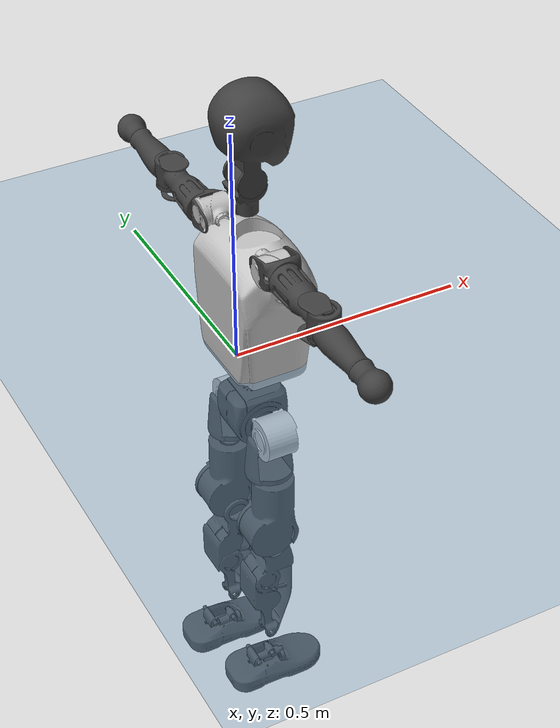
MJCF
<mujoco model="T1">
  <compiler angle="radian" assetdir="assets" balanceinertia="true" inertiafromgeom="false"/>

  <option timestep="0.005" density="1.2" viscosity="2e-05"/>

  <size nkey="1"/>

  <visual>
    <quality shadowsize="8192"/>
    <map shadowclip="0.5"/>
  </visual>

  <default>
    <default class="/">
      <joint armature="0.01" damping="0.01" frictionloss="0.1"/>
      <geom contype="0" conaffinity="0" group="1" solref="-1000 -80"/>
      <site size="0.01 0.005 0.005" group="5"/>
      <general forcelimited="true" biastype="affine" gainprm="25" biasprm="0 -25 -0.6"/>
      <default class="t1">
        <geom rgba="0.25 0.25 0.25 1"/>
        <default class="visual">
          <geom type="mesh" group="2"/>
        </default>
        <default class="collision">
          <geom group="3"/>
        </default>
        <default class="foot">
          <geom size="0.1115 0.05 0.015" type="box" condim="6" group="4" priority="1" solimp="0.015 1 0.015"/>
        </default>
        <default class="reward_collision_sphere">
          <geom group="5" rgba="1 0 0 1"/>
        </default>
      </default>
    </default>
  </default>

  <asset>
    <texture type="skybox" colorspace="auto" name="//unnamed_texture_0" builtin="gradient" rgb1="0.95 0.95 0.95" rgb2="0.95 0.95 0.95" width="100" height="600"/>
    <texture type="2d" colorspace="auto" name="texplane" builtin="checker" rgb1="0.345 0.575 0.748" rgb2="0.345 0.575 0.748" markrgb="1 1 1" width="512" height="512"/>
    <material name="MatPlane" class="/" texture="texplane" texuniform="true" texrepeat="2 2" specular="0.9"/>
    <mesh name="Trunk" class="/" file="Trunk.stl"/>
    <mesh name="H1" class="/" file="H1.stl"/>
    <mesh name="H2" class="/" file="H2.stl"/>
    <mesh name="AL1" class="/" file="AL1.stl"/>
    <mesh name="AL2" class="/" file="AL2.stl"/>
    <mesh name="AL3" class="/" file="AL3.stl"/>
    <mesh name="left_hand_link" class="/" file="left_hand_link.stl"/>
    <mesh name="AR1" class="/" file="AR1.stl"/>
    <mesh name="AR2" class="/" file="AR2.stl"/>
    <mesh name="AR3" class="/" file="AR3.stl"/>
    <mesh name="right_hand_link" class="/" file="right_hand_link.stl"/>
    <mesh name="Waist" class="/" file="Waist.stl"/>
    <mesh name="Hip_Pitch_Left" class="/" file="Hip_Pitch_Left.stl"/>
    <mesh name="Hip_Roll_Left" class="/" file="Hip_Roll_Left.stl"/>
    <mesh name="Hip_Yaw_Left" class="/" file="Hip_Yaw_Left.stl"/>
    <mesh name="Shank_Left" class="/" file="Shank_Left.stl"/>
    <mesh name="Ankle_Cross_Left" class="/" file="Ankle_Cross_Left.stl"/>
    <mesh name="left_foot_link" class="/" file="left_foot_link.stl"/>
    <mesh name="Hip_Pitch_Right" class="/" file="Hip_Pitch_Right.stl"/>
    <mesh name="Hip_Roll_Right" class="/" file="Hip_Roll_Right.stl"/>
    <mesh name="Hip_Yaw_Right" class="/" file="Hip_Yaw_Right.stl"/>
    <mesh name="Shank_Right" class="/" file="Shank_Right.stl"/>
    <mesh name="Ankle_Cross_Right" class="/" file="Ankle_Cross_Right.stl"/>
    <mesh name="right_foot_link" class="/" file="right_foot_link.stl"/>
  </asset>

  <worldbody>
    <geom name="floor" class="/" size="100 100 0.125" type="plane" group="0" material="MatPlane"/>
    <light name="toplight_shadow" class="/" pos="0 0 5" dir="0.0990148 0.0990148 -0.990148" type="directional" ambient="0.04 0.04 0.04" diffuse="0.55 0.55 0.55" specular="0.12 0.12 0.12"/>
    <light name="toplight_fill" class="/" pos="0 0 5" dir="0.0990148 0.0990148 -0.990148" type="directional" castshadow="false" ambient="0.04 0.04 0.04" diffuse="0.3 0.3 0.3" specular="0.08 0.08 0.08"/>
    <body name="trunk" childclass="t1" pos="-0.00794154 0.00141731 -0.00120077" quat="1 0.000714252 0.000394503 -0.000368188">
      <inertial pos="0.0277536 -0.00364189 0.139071" quat="0.999799 -0.00529151 -0.00506619 -0.0186523" mass="6.46288" diaginertia="0.00281406 0.0220323 0.17064"/>
      <joint name="//unnamed_joint_0" type="free" armature="0" damping="0" frictionloss="0"/>
      <geom name="//unnamed_geom_1" class="visual" rgba="0.76 0.76 0.76 1" mesh="Trunk"/>
      <geom name="//unnamed_geom_2" class="collision" size="0.0639442 0.0852589 0.127888" pos="0.0306882 0 0.151664" type="box"/>
      <geom name="//unnamed_geom_3" class="reward_collision_sphere" size="0.0980477" pos="0.0306882 0 0.126387"/>
      <geom name="//unnamed_geom_4" class="reward_collision_sphere" size="0.0127888" pos="0.0306882 0.0665063 0"/>
      <geom name="//unnamed_geom_5" class="reward_collision_sphere" size="0.0127888" pos="0.0306882 -0.0665063 0"/>
      <geom name="//unnamed_geom_6" class="reward_collision_sphere" size="0.0127888" pos="0.0306882 0.0837197 0.227497"/>
      <geom name="//unnamed_geom_7" class="reward_collision_sphere" size="0.0127888" pos="0.0306882 -0.0837197 0.227497"/>
      <site name="imu" pos="0.0608883 0.0258951 -0.0442337" size="0.00852589"/>
      <camera name="track" pos="0 -1.56485 0" quat="0.707107 0.707107 0 0" mode="trackcom"/>
      <camera name="ego_camera" pos="0.0623993 0 0.530825" quat="-0.5 -0.5 0.5 0.5"/>
      <body name="H1" pos="0.0455622 0.0125839 0.320683" quat="0.999999 -0.00114419 0.00104274 -0.000373747">
        <inertial pos="0.00676233 -0.00416522 0.0783971" quat="0.788535 -0.0529427 -0.0218323 0.612318" mass="0.238007" diaginertia="8.41423e-06 7.5101e-05 0.000468848"/>
        <joint name="AAHead_yaw" pos="0 0 0" axis="0.0218411 0.0549271 0.998251" range="-1.57798 1.493" armature="0.00431497" damping="0" frictionloss="0.0570264"/>
        <geom name="//unnamed_geom_8" class="visual" mesh="H1"/>
        <body name="H2" pos="-0.00445823 -0.00125029 0.0787127" quat="0.999988 -0.00229031 -0.00434777 0.000232502">
          <inertial pos="0.00355872 0.0140112 0.123795" quat="0.988718 0.100955 -0.082856 -0.073349" mass="0.356909" diaginertia="7.86137e-05 0.0005972 0.00533615"/>
          <joint name="Head_pitch" pos="0 0 0" axis="0.00113752 -0.999999 0.000980451" stiffness="0.0322274" range="-1.28566 0.35713" armature="0.00541945" damping="0" frictionloss="0.089876"/>
          <geom name="//unnamed_geom_9" class="visual" mesh="H2"/>
          <geom name="//unnamed_geom_10" class="collision" size="0.0682071" pos="0.0051147 0 0.139026"/>
          <geom name="//unnamed_geom_11" class="reward_collision_sphere" size="0.076733" pos="0.0102294 0 0.126387"/>
        </body>
      </body>
      <body name="AL1" pos="0.0246244 0.0717416 0.269465" quat="1 0.000160914 0.000272286 1.91582e-05">
        <inertial pos="0.0123977 0.0228872 0.00937445" quat="0.495056 0.50104 -0.512511 0.491131" mass="0.278711" diaginertia="3.99466e-05 0.000318234 0.000854747"/>
        <joint name="Left_Shoulder_Pitch" pos="0 0 0" axis="-0.0234059 0.999174 0.033217" range="-3.41663 1.24784" armature="0.00560261" damping="0" frictionloss="0.120625"/>
        <geom name="//unnamed_geom_12" class="visual" rgba="0.76 0.76 0.76 1" mesh="AL1"/>
        <body name="AL2" pos="0.000259897 0.0262393 -0.00804323" quat="0.999997 0.000916316 0.00169738 0.00130545">
          <inertial pos="0.00196563 0.0324195 -0.00640081" quat="0.487512 0.512758 -0.487253 0.511854" mass="0.0944467" diaginertia="1.05263e-05 7.1974e-05 0.000530122"/>
          <joint name="Left_Shoulder_Roll" pos="0 0 0" axis="-0.999688 -0.0109795 0.0224484" stiffness="0.0101546" range="-1.73313 1.96046" armature="0.00883078" damping="0" frictionloss="0.0880111"/>
          <geom name="//unnamed_geom_13" class="visual" mesh="AL2"/>
          <body name="AL3" pos="-0.0121286 0.0471397 0.000615029" quat="0.999993 0.0016012 -0.000137002 -0.00336787">
            <inertial pos="-0.00161023 0.0641776 -0.00998206" quat="0.708596 0.703948 0.048436 -0.00149062" mass="0.618076" diaginertia="0.000378017 0.00364919 0.00191781"/>
            <joint name="Left_Elbow_Pitch" pos="0 0 0" axis="-0.00272025 -0.999994 0.00223351" stiffness="0.0201205" range="-2.26471 2.06396" armature="0.0129079" damping="0.0332343" frictionloss="0.0805546"/>
            <geom name="//unnamed_geom_14" class="visual" mesh="AL3"/>
            <geom name="//unnamed_geom_15" class="collision" size="0.0255777 0.0639442" pos="0 0.0391213 0" quat="0.707105 0.707108 0 0" type="cylinder"/>
            <geom name="//unnamed_geom_16" class="reward_collision_sphere" size="0.0306932"/>
            <body name="left_hand_link" pos="-0.00435843 0.115991 0.00193203" quat="0.999989 2.22405e-05 0.00318071 -0.00333739">
              <inertial pos="-0.0139717 0.0960882 0.00187593" quat="0.717815 0.696033 0.0148501 -0.00773738" mass="0.224954" diaginertia="0.000285593 0.00240847 0.000799557"/>
              <joint name="Left_Elbow_Yaw" pos="0 0 0" axis="-0.0390561 0.00833285 0.999202" range="-2.56752 0.145359" armature="0.00417721" damping="0" frictionloss="0.044357"/>
              <geom name="//unnamed_geom_17" class="visual" mesh="left_hand_link"/>
              <geom name="//unnamed_geom_18" class="collision" size="0.0255777 0.0746015" pos="0 0.101715 0" quat="0.707105 0.707108 0 0" type="cylinder"/>
              <geom name="//unnamed_geom_19" class="reward_collision_sphere" size="0.0426294"/>
              <geom name="//unnamed_geom_20" class="reward_collision_sphere" size="0.0298406" pos="0 0.0860669 0"/>
              <geom name="//unnamed_geom_21" class="reward_collision_sphere" size="0.0298406" pos="0 0.168222 0"/>
            </body>
          </body>
        </body>
      </body>
      <body name="AR1" pos="0.0300444 -0.0718363 0.276526" quat="0.999994 0.00300762 0.00179265 -0.000373767">
        <inertial pos="-0.00627032 -0.0390726 0.000717131" quat="0.504015 0.496184 -0.503947 0.49579" mass="0.323624" diaginertia="4.94897e-05 0.000366094 0.000919898"/>
        <joint name="Right_Shoulder_Pitch" pos="0 0 0" axis="0.0047944 -0.999988 0.00103436" range="-1.21241 3.23494" armature="0.00540508" damping="0.0675645" frictionloss="0.114935"/>
        <geom name="//unnamed_geom_22" class="visual" rgba="0.76 0.76 0.76 1" mesh="AR1"/>
        <body name="AR2" pos="0.00010447 -0.0421948 0.0116606" quat="1 -0.000160197 -0.000348874 -0.000792405">
          <inertial pos="0.00881525 -0.0390847 0.0127828" quat="0.51205 0.488409 -0.511727 0.487234" mass="0.0905689" diaginertia="1.26381e-05 0.00010544 0.00047966"/>
          <joint name="Right_Shoulder_Roll" pos="0 0 0" axis="-0.99967 0.0234035 -0.0105586" stiffness="0.0533038" range="-2.00232 1.59638" armature="0.00644909" damping="0" frictionloss="0.0825565"/>
          <geom name="//unnamed_geom_23" class="visual" mesh="AR2"/>
          <body name="AR3" pos="-0.00082226 -0.0550997 -0.00377227" quat="1 6.33126e-07 -3.9767e-05 -0.000274468">
            <inertial pos="0.011813 -0.0711342 0.000395942" quat="0.718189 0.695259 -0.0283663 0.00385" mass="0.646942" diaginertia="0.000468754 0.00376313 0.00172286"/>
            <joint name="Right_Elbow_Pitch" pos="0 0 0" axis="-0.0220037 0.999517 0.0219603" stiffness="0.048212" range="-2.28937 2.42411" armature="0.0078895" damping="0.0153416" frictionloss="0.136401"/>
            <geom name="//unnamed_geom_24" class="visual" mesh="AR3"/>
            <geom name="//unnamed_geom_25" class="collision" size="0.0255777 0.0639442" pos="0 -0.0391213 0" quat="0.707105 0.707108 0 0" type="cylinder"/>
            <geom name="//unnamed_geom_26" class="reward_collision_sphere" size="0.0306932"/>
            <body name="right_hand_link" pos="-0.00773188 -0.122044 -0.00184154" quat="1 0.000270713 4.66912e-05 0.000512007">
              <inertial pos="-0.00015476 -0.0836586 -0.00982112" quat="0.705776 0.708435 0.000664848 -0.000165352" mass="0.202202" diaginertia="0.000280839 0.00275255 0.000750659"/>
              <joint name="Right_Elbow_Yaw" pos="0 0 0" axis="1.24961e-06 -2.79773e-05 1" range="-0.145898 2.52499" armature="0.00938885" damping="0.0266959" frictionloss="0.133913"/>
              <geom name="//unnamed_geom_27" class="visual" mesh="right_hand_link"/>
              <geom name="//unnamed_geom_28" class="collision" size="0.0255777 0.0746015" pos="0 -0.101715 0" quat="0.707105 0.707108 0 0" type="cylinder"/>
              <geom name="//unnamed_geom_29" class="reward_collision_sphere" size="0.0426294"/>
              <geom name="//unnamed_geom_30" class="reward_collision_sphere" size="0.0298406" pos="0 -0.0860669 0"/>
              <geom name="//unnamed_geom_31" class="reward_collision_sphere" size="0.0298406" pos="0 -0.168222 0"/>
            </body>
          </body>
        </body>
      </body>
      <body name="Waist" pos="0.038954 -0.00436607 -0.149055" quat="0.999999 -0.000553005 0.000995552 -0.00108667">
        <inertial pos="0.00435046 -0.00166267 0.00894651" quat="0.977936 0.00570296 -0.207755 0.0211236" mass="1.80367" diaginertia="0.000158968 0.00153641 0.0129176"/>
        <joint name="Waist" pos="0 0 0" axis="0.0226032 -0.0426174 0.998836" range="-1.42616 1.71149" armature="0.0090919" damping="0" frictionloss="0.133577"/>
        <geom name="//unnamed_geom_32" class="visual" mesh="Waist"/>
        <body name="Hip_Pitch_Left" pos="0.00146066 0.0794375 0.00353662" quat="1 0.000634718 -0.000189723 -0.000257282">
          <inertial pos="0.00233531 0.00400847 -0.0273631" quat="0.970012 0.240165 0.0373233 -0.0018978" mass="0.641724" diaginertia="6.86951e-05 0.000375257 0.00343827"/>
          <joint name="Left_Hip_Pitch" pos="0 0 0" axis="0.00516794 0.999981 0.0033687" range="-1.72036 1.58067" armature="0.00540138" damping="0" frictionloss="0.0841956"/>
          <geom name="//unnamed_geom_33" class="visual" rgba="0.76 0.76 0.76 1" mesh="Hip_Pitch_Left"/>
          <body name="Hip_Roll_Left" pos="-0.0117 -0.00271733 -0.0266391" quat="0.999986 -0.00245724 0.000928904 0.00467244">
            <inertial pos="-0.00739581 0.00109021 -0.0691603" quat="0.709052 -0.00752218 -0.00818972 0.705068" mass="0.310398" diaginertia="8.25212e-05 0.000523326 0.00188809"/>
            <joint name="Left_Hip_Roll" pos="0 0 0" axis="-0.998652 -0.0365817 -0.0368335" range="-1.81325 0.201726" armature="0.0116383" damping="0.0380832" frictionloss="0.106206"/>
            <geom name="//unnamed_geom_34" class="visual" mesh="Hip_Roll_Left"/>
            <geom name="//unnamed_geom_35" class="reward_collision_sphere" size="0.0468924"/>
            <body name="Hip_Yaw_Left" pos="-0.00681009 0.00368253 -0.110347" quat="0.999985 0.00465955 0.00277866 0.000386737">
              <inertial pos="0.0087849 0.00270413 -0.109034" quat="0.692073 -0.0409578 -0.0424825 0.719411" mass="1.35494" diaginertia="0.00077951 0.00764995 0.00854329"/>
              <joint name="Left_Hip_Yaw" pos="0 0 0" axis="-0.0139052 -0.00910213 -0.999862" stiffness="0.0558004" range="-1.26071 0.787441" armature="0.00815304" damping="0.00559648" frictionloss="0.0426088"/>
              <geom name="//unnamed_geom_36" class="visual" mesh="Hip_Yaw_Left"/>
              <geom name="//unnamed_geom_37" class="collision" size="0.0426294 0.0682071" type="cylinder"/>
              <body name="Shank_Left" pos="-0.00926034 -0.0117669 -0.165009" quat="1 6.03279e-05 -0.000311737 8.20696e-06">
                <inertial pos="0.00989807 -0.00319836 -0.16091" quat="0.993502 -0.053783 -0.0180278 0.0986716" mass="1.1834" diaginertia="0.00123383 0.00848229 0.00544522"/>
                <joint name="Left_Knee_Pitch" pos="0 0 0" axis="0.0485509 0.998769 -0.0101596" stiffness="0.00263517" range="0.0273963 2.15498" armature="0.0121713" damping="0" frictionloss="0.0329595"/>
                <geom name="//unnamed_geom_38" class="visual" mesh="Shank_Left"/>
                <geom name="//unnamed_geom_39" class="collision" size="0.0426294 0.0639442" pos="0 0 -0.151664" type="cylinder"/>
                <geom name="//unnamed_geom_40" class="reward_collision_sphere" size="0.0554183"/>
                <body name="Ankle_Cross_Left" pos="-0.000717781 0.00052076 -0.359316" quat="1 -0.000190808 0.000279119 -0.000260111">
                  <inertial pos="-0.000299108 -0.00236658 -0.00968912" quat="0.442288 0.552642 0.551561 0.441303" mass="0.0413666" diaginertia="8.64662e-07 7.01427e-06 3.26621e-05"/>
                  <joint name="Left_Ankle_Pitch" pos="0 0 0" axis="0.0350319 0.999007 0.0275272" stiffness="0.021604" range="-0.878336 0.512424" armature="0.00307651" damping="0.0172306" frictionloss="0.108984"/>
                  <geom name="//unnamed_geom_41" class="visual" mesh="Ankle_Cross_Left"/>
                  <body name="left_foot_link" pos="-0.0131876 -0.00271272 -0.00986403" quat="1 -0.000165687 6.33224e-05 0.000470633">
                    <inertial pos="0.0119996 -0.00793645 -0.0110965" quat="0.0040342 0.61807 0.00198272 0.78611" mass="0.432011" diaginertia="9.28779e-05 0.000670933 0.00792465"/>
                    <joint name="Left_Ankle_Roll" pos="0 0 0" axis="-0.999963 -0.00663549 0.00547691" range="-0.582859 0.560688" armature="0.00856153" damping="0.0725353" frictionloss="0.0903714"/>
                    <geom name="//unnamed_geom_42" class="visual" mesh="left_foot_link"/>
                    <geom name="left_foot" class="foot" size="0.11853 0.0598268 0.0160533" pos="0.0051147 0 -0.018958"/>
                    <geom name="//unnamed_geom_44" class="reward_collision_sphere" size="0.0443346" pos="0.0051147 0 -0.018958"/>
                    <geom name="//unnamed_geom_45" class="reward_collision_sphere" size="0.0255777" pos="0.0485896 -0.0179958 -0.018958"/>
                    <geom name="//unnamed_geom_46" class="reward_collision_sphere" size="0.0255777" pos="-0.0358029 -0.0179958 -0.018958"/>
                    <site name="left_foot" class="foot" pos="0.0051147 0 -0.018958" size="0.00852589"/>
                  </body>
                </body>
              </body>
            </body>
          </body>
        </body>
        <body name="Hip_Pitch_Right" pos="0.00753645 -0.0830632 0.00794868" quat="1 -0.000505379 -5.36699e-05 -0.000639061">
          <inertial pos="0.00164739 0.00484556 -0.0122327" quat="0.974548 -0.223791 0.00739444 0.0109137" mass="0.628382" diaginertia="7.32813e-05 0.000367323 0.00374863"/>
          <joint name="Right_Hip_Pitch" pos="0 0 0" axis="0.0195362 -0.999635 -0.0186805" stiffness="0.0252132" range="-1.29089 1.54851" armature="0.00921602" damping="0" frictionloss="0.136157"/>
          <geom name="//unnamed_geom_47" class="visual" rgba="0.76 0.76 0.76 1" mesh="Hip_Pitch_Right"/>
          <body name="Hip_Roll_Right" pos="-0.0120673 -0.00140215 -0.0291412" quat="0.999998 0.00167661 -0.000614725 0.000328034">
            <inertial pos="0.00423585 0.00937605 -0.0775333" quat="0.711896 -0.0222724 -0.00593642 0.701906" mass="0.268771" diaginertia="6.72576e-05 0.00052987 0.00159394"/>
            <joint name="Right_Hip_Roll" pos="0 0 0" axis="-0.998221 -0.0374853 0.046358" stiffness="0.00460399" range="-0.17118 1.61922" armature="0.0121417" damping="0" frictionloss="0.0765599"/>
            <geom name="//unnamed_geom_48" class="visual" mesh="Hip_Roll_Right"/>
            <geom name="//unnamed_geom_49" class="reward_collision_sphere" size="0.0468924"/>
            <body name="Hip_Yaw_Right" pos="0.00322322 -0.0051101 -0.0936456" quat="0.999999 0.0013107 2.53083e-05 0.000595178">
              <inertial pos="-0.00992279 -0.0115438 -0.105507" quat="0.757458 -0.0209644 -0.00989581 0.652472" mass="1.33353" diaginertia="0.000879275 0.00797826 0.00901798"/>
              <joint name="Right_Hip_Yaw" pos="0 0 0" axis="-0.00171689 -0.00156958 -0.999997" range="-0.932365 0.939753" armature="0.00892589" damping="0.0134125" frictionloss="0.0844001"/>
              <geom name="//unnamed_geom_50" class="visual" mesh="Hip_Yaw_Right"/>
              <geom name="//unnamed_geom_51" class="collision" size="0.0426294 0.0682071" type="cylinder"/>
              <body name="Shank_Right" pos="-0.00921516 0.0119647 -0.179076" quat="1 0.000969422 0.000168372 -0.000174075">
                <inertial pos="0.0096083 -0.0138991 -0.149294" quat="0.999097 0.0179734 -0.0362915 0.0128831" mass="0.951603" diaginertia="0.00136162 0.0111561 0.00667439"/>
                <joint name="Right_Knee_Pitch" pos="0 0 0" axis="0.00658914 -0.999961 -0.00589123" range="-2.21074 0.00107548" armature="0.00852191" damping="0" frictionloss="0.109054"/>
                <geom name="//unnamed_geom_52" class="visual" mesh="Shank_Right"/>
                <geom name="//unnamed_geom_53" class="collision" size="0.0426294 0.0639442" pos="0 0 -0.151664" type="cylinder"/>
                <geom name="//unnamed_geom_54" class="reward_collision_sphere" size="0.0554183"/>
                <body name="Ankle_Cross_Right" pos="0.00285445 -0.00354687 -0.351306" quat="1 5.42675e-05 -8.95133e-05 4.88416e-05">
                  <inertial pos="0.00138366 0.0104177 -0.0134423" quat="0.449469 0.595347 0.524857 0.409957" mass="0.043429" diaginertia="9.82519e-07 9.96595e-06 4.12105e-05"/>
                  <joint name="Right_Ankle_Pitch" pos="0 0 0" axis="-0.0442674 -0.999019 0.00127764" range="-0.47162 0.871414" armature="0.00457147" damping="0.0633052" frictionloss="0.0812211"/>
                  <geom name="//unnamed_geom_55" class="visual" mesh="Ankle_Cross_Right"/>
                  <body name="right_foot_link" pos="-0.000402986 -0.00356779 -0.0264273" quat="1 2.72543e-05 8.64561e-07 2.10233e-06">
                    <inertial pos="0.00266957 -0.00460785 -0.0225725" quat="0.0195012 0.602644 0.0208705 0.797499" mass="0.436493" diaginertia="8.18647e-05 0.000664601 0.0069975"/>
                    <joint name="Right_Ankle_Roll" pos="0 0 0" axis="-0.999987 -0.00479724 0.00178577" range="-0.456697 0.591839" armature="0.00977026" damping="0.00450437" frictionloss="0.119469"/>
                    <geom name="//unnamed_geom_56" class="visual" mesh="right_foot_link"/>
                    <geom name="right_foot" class="foot" size="0.0933813 0.0427696 0.0106869" pos="0.0051147 0 -0.018958"/>
                    <geom name="//unnamed_geom_58" class="reward_collision_sphere" size="0.0341035"/>
                    <geom name="//unnamed_geom_59" class="reward_collision_sphere" size="0.0255777" pos="0.0051147 0 -0.018958"/>
                    <geom name="//unnamed_geom_60" class="reward_collision_sphere" size="0.0255777" pos="0.0485896 0.0179958 -0.018958"/>
                    <geom name="//unnamed_geom_61" class="reward_collision_sphere" size="0.0255777" pos="-0.0358029 0.0179958 -0.018958"/>
                    <site name="right_foot" class="foot" pos="0.0051147 0 -0.018958" size="0.00852589"/>
                  </body>
                </body>
              </body>
            </body>
          </body>
        </body>
      </body>
    </body>
  </worldbody>

  <contact>
    <pair class="/" geom1="floor" geom2="left_foot" name="//unnamed_contact_0"/>
    <pair class="/" geom1="floor" geom2="right_foot" name="//unnamed_contact_1"/>
  </contact>

  <actuator>
    <general name="AAHead_yaw" class="/" joint="AAHead_yaw" forcerange="-4.09748 4.09748" gainprm="18.8574" biasprm="0 -18.8574 -0.637887"/>
    <general name="Head_pitch" class="/" joint="Head_pitch" forcerange="-5.50833 5.50833" gainprm="18.8574" biasprm="0 -18.8574 -0.637887"/>
    <general name="Left_Shoulder_Pitch" class="/" joint="Left_Shoulder_Pitch" forcerange="-15.4515 15.4515" gainprm="18.8574" biasprm="0 -18.8574 -0.637887"/>
    <general name="Left_Shoulder_Roll" class="/" joint="Left_Shoulder_Roll" forcerange="-14.9543 14.9543" gainprm="18.8574" biasprm="0 -18.8574 -0.637887"/>
    <general name="Left_Elbow_Pitch" class="/" joint="Left_Elbow_Pitch" forcerange="-10.2408 10.2408" gainprm="18.8574" biasprm="0 -18.8574 -0.637887"/>
    <general name="Left_Elbow_Yaw" class="/" joint="Left_Elbow_Yaw" forcerange="-11.4946 11.4946" gainprm="18.8574" biasprm="0 -18.8574 -0.637887"/>
    <general name="Right_Shoulder_Pitch" class="/" joint="Right_Shoulder_Pitch" forcerange="-18.4546 18.4546" gainprm="18.8574" biasprm="0 -18.8574 -0.637887"/>
    <general name="Right_Shoulder_Roll" class="/" joint="Right_Shoulder_Roll" forcerange="-16.9662 16.9662" gainprm="18.8574" biasprm="0 -18.8574 -0.637887"/>
    <general name="Right_Elbow_Pitch" class="/" joint="Right_Elbow_Pitch" forcerange="-16.0619 16.0619" gainprm="18.8574" biasprm="0 -18.8574 -0.637887"/>
    <general name="Right_Elbow_Yaw" class="/" joint="Right_Elbow_Yaw" forcerange="-13.6748 13.6748" gainprm="18.8574" biasprm="0 -18.8574 -0.637887"/>
    <general name="Waist" class="/" joint="Waist" forcerange="-27.4956 27.4956" gainprm="18.8574" biasprm="0 -18.8574 -0.637887"/>
    <general name="Left_Hip_Pitch" class="/" joint="Left_Hip_Pitch" forcerange="-38.2225 38.2225" gainprm="18.8574" biasprm="0 -18.8574 -0.637887"/>
    <general name="Left_Hip_Roll" class="/" joint="Left_Hip_Roll" forcerange="-23.877 23.877" gainprm="18.8574" biasprm="0 -18.8574 -0.637887"/>
    <general name="Left_Hip_Yaw" class="/" joint="Left_Hip_Yaw" forcerange="-34.2712 34.2712" gainprm="18.8574" biasprm="0 -18.8574 -0.637887"/>
    <general name="Left_Knee_Pitch" class="/" joint="Left_Knee_Pitch" forcerange="-39.5701 39.5701" gainprm="18.8574" biasprm="0 -18.8574 -0.637887"/>
    <general name="Left_Ankle_Pitch" class="/" joint="Left_Ankle_Pitch" forcerange="-21.0659 21.0659" gainprm="18.8574" biasprm="0 -18.8574 -0.637887"/>
    <general name="Left_Ankle_Roll" class="/" joint="Left_Ankle_Roll" forcerange="-12.452 12.452" gainprm="18.8574" biasprm="0 -18.8574 -0.637887"/>
    <general name="Right_Hip_Pitch" class="/" joint="Right_Hip_Pitch" forcerange="-38.7353 38.7353" gainprm="18.8574" biasprm="0 -18.8574 -0.637887"/>
    <general name="Right_Hip_Roll" class="/" joint="Right_Hip_Roll" forcerange="-27.0524 27.0524" gainprm="18.8574" biasprm="0 -18.8574 -0.637887"/>
    <general name="Right_Hip_Yaw" class="/" joint="Right_Hip_Yaw" forcerange="-29.4896 29.4896" gainprm="18.8574" biasprm="0 -18.8574 -0.637887"/>
    <general name="Right_Knee_Pitch" class="/" joint="Right_Knee_Pitch" forcerange="-69.0197 69.0197" gainprm="18.8574" biasprm="0 -18.8574 -0.637887"/>
    <general name="Right_Ankle_Pitch" class="/" joint="Right_Ankle_Pitch" forcerange="-24.0141 24.0141" gainprm="18.8574" biasprm="0 -18.8574 -0.637887"/>
    <general name="Right_Ankle_Roll" class="/" joint="Right_Ankle_Roll" forcerange="-10.9057 10.9057" gainprm="18.8574" biasprm="0 -18.8574 -0.637887"/>
  </actuator>

  <sensor>
    <gyro site="imu" name="imu_angular_velocity"/>
    <velocimeter site="imu" name="imu_linear_velocity"/>
    <framelinvel objtype="site" objname="left_foot" name="left_foot_global_linear_velocity"/>
    <framelinvel objtype="site" objname="right_foot" name="right_foot_global_linear_velocity"/>
  </sensor>

  <keyframe>
    <key name="home" qpos="0 0 0.6385 1 0 0 0 0 0 0 1.4 0 -0.4 0 -1.4 0 0.4 0 -0.4 0 0 0.8 -0.4 0 0.4 0 0 -0.8 0.4 0"/>
  </keyframe>
</mujoco>
